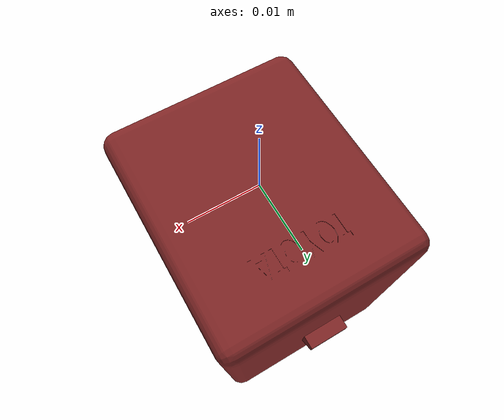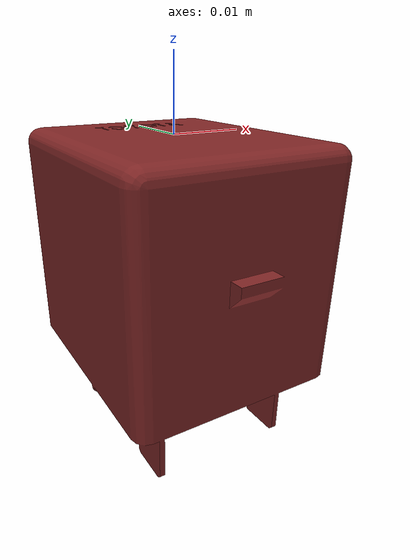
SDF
<?xml version="1.0" ?>
<sdf version="1.6">
  <model name="relay_part_01">
    <link name="link">
      <gravity>false</gravity>
      <visual name="visual">
        <geometry>
          <mesh>
            <uri>file:///root/workcell_ws_classic/src/descriptions/meshes/feeder/kiro/Relay_Part_01.STL</uri>
            <scale>1 1 1</scale>
          </mesh>
        </geometry>
        <material>
          <!-- Relay Part 01: dark red metallic -->
          <ambient>0.3 0.1 0.1 1</ambient>
          <diffuse>0.5 0.15 0.15 1</diffuse>
          <specular>0.3 0.3 0.3 1</specular>
          <emissive>0 0 0 1</emissive>
        </material>
      </visual>

        <inertial>
          <mass>0.5</mass>
          <inertia>
            <ixx>0.001</ixx>
            <ixy>0</ixy>
            <ixz>0</ixz>
            <iyy>0.001</iyy>
            <iyz>0</iyz>
            <izz>0.001</izz>
          </inertia>
        </inertial>
    </link>
  </model>
</sdf>
